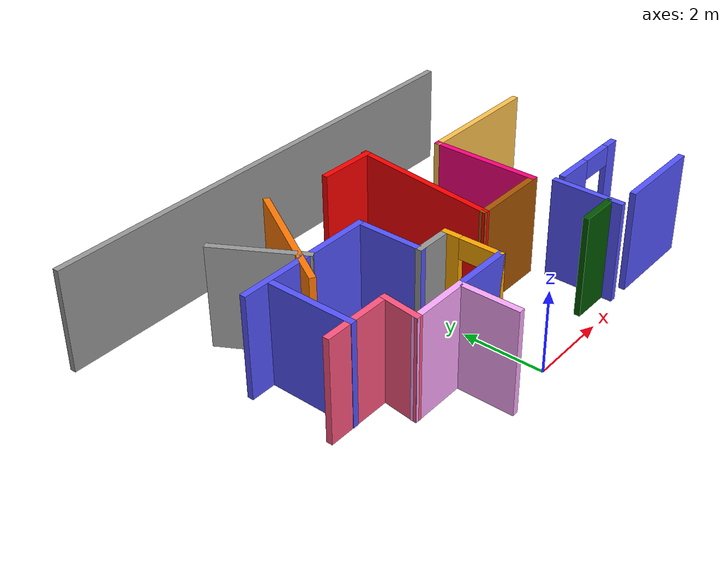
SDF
<sdf version="1.6">
 <model name="try_example">
  <link name="Wall_11">
   <pose>4.4301 4.9191 0 0 -0 3.14159</pose>
   <visual name="Wall_11_Visual">
    <pose>0 0 1.25 0 -0 0</pose>
    <geometry><box><size>3.25 0.15 2.5</size></box></geometry>
    <material>
     <script><uri>file://media/materials/scripts/gazebo.material</uri><name>Gazebo/Grey</name></script>
     <ambient>1 0.764706 0.305882 1</ambient>
     <diffuse>0.7 0.7 0.7 1</diffuse>
     <specular>0.01 0.01 0.01 1</specular>
     <emissive>0 0 0 1</emissive>
    </material>
   </visual>
   <collision name="Wall_11_Collision">
    <pose>0 0 1.25 0 -0 0</pose>
    <geometry><box><size>3.25 0.15 2.5</size></box></geometry>
    <surface>
     <friction>
      <ode><mu>1</mu><mu2>1</mu2><fdir1>0 0 0</fdir1><slip1>0</slip1><slip2>0</slip2></ode>
      <torsional>
       <coefficient>1</coefficient>
       <patch_radius>0</patch_radius>
       <surface_radius>0</surface_radius>
       <use_patch_radius>1</use_patch_radius>
       <ode><slip>0</slip></ode>
      </torsional>
     </friction>
     <bounce><restitution_coefficient>0</restitution_coefficient><threshold>1e+06</threshold></bounce>
     <contact>
      <collide_without_contact>0</collide_without_contact>
      <collide_without_contact_bitmask>1</collide_without_contact_bitmask>
      <collide_bitmask>1</collide_bitmask>
      <ode>
       <soft_cfm>0</soft_cfm>
       <soft_erp>0.2</soft_erp>
       <kp>1e+13</kp>
       <kd>1</kd>
       <max_vel>0.01</max_vel>
       <min_depth>0</min_depth>
      </ode>
      <bullet>
       <split_impulse>1</split_impulse>
       <split_impulse_penetration_threshold>-0.01</split_impulse_penetration_threshold>
       <soft_cfm>0</soft_cfm>
       <soft_erp>0.2</soft_erp>
       <kp>1e+13</kp>
       <kd>1</kd>
      </bullet>
     </contact>
    </surface>
   </collision>
  </link>
  <link name="Wall_12">
   <pose>2.8801 3.6191 0 0 0 -1.5708</pose>
   <visual name="Wall_12_Visual">
    <pose>0 0 1.25 0 -0 0</pose>
    <geometry><box><size>2.75 0.15 2.5</size></box></geometry>
    <material>
     <script><uri>file://media/materials/scripts/gazebo.material</uri><name>Gazebo/Grey</name></script>
     <ambient>1 0 0.498039 1</ambient>
     <diffuse>0.7 0.7 0.7 1</diffuse>
     <specular>0.01 0.01 0.01 1</specular>
     <emissive>0 0 0 1</emissive>
    </material>
   </visual>
   <collision name="Wall_12_Collision">
    <pose>0 0 1.25 0 -0 0</pose>
    <geometry><box><size>2.75 0.15 2.5</size></box></geometry>
    <surface>
     <friction>
      <ode><mu>1</mu><mu2>1</mu2><fdir1>0 0 0</fdir1><slip1>0</slip1><slip2>0</slip2></ode>
      <torsional>
       <coefficient>1</coefficient>
       <patch_radius>0</patch_radius>
       <surface_radius>0</surface_radius>
       <use_patch_radius>1</use_patch_radius>
       <ode><slip>0</slip></ode>
      </torsional>
     </friction>
     <bounce><restitution_coefficient>0</restitution_coefficient><threshold>1e+06</threshold></bounce>
     <contact>
      <collide_without_contact>0</collide_without_contact>
      <collide_without_contact_bitmask>1</collide_without_contact_bitmask>
      <collide_bitmask>1</collide_bitmask>
      <ode>
       <soft_cfm>0</soft_cfm>
       <soft_erp>0.2</soft_erp>
       <kp>1e+13</kp>
       <kd>1</kd>
       <max_vel>0.01</max_vel>
       <min_depth>0</min_depth>
      </ode>
      <bullet>
       <split_impulse>1</split_impulse>
       <split_impulse_penetration_threshold>-0.01</split_impulse_penetration_threshold>
       <soft_cfm>0</soft_cfm>
       <soft_erp>0.2</soft_erp>
       <kp>1e+13</kp>
       <kd>1</kd>
      </bullet>
     </contact>
    </surface>
   </collision>
  </link>
  <link name="Wall_13">
   <pose>1.9551 2.3191 0 0 -0 3.14159</pose>
   <visual name="Wall_13_Visual">
    <pose>0 0 1.25 0 -0 0</pose>
    <geometry><box><size>2 0.15 2.5</size></box></geometry>
    <material>
     <script><uri>file://media/materials/scripts/gazebo.material</uri><name>Gazebo/Grey</name></script>
     <ambient>0.666667 0.333333 0 1</ambient>
     <diffuse>0.7 0.7 0.7 1</diffuse>
     <specular>0.01 0.01 0.01 1</specular>
     <emissive>0 0 0 1</emissive>
    </material>
   </visual>
   <collision name="Wall_13_Collision">
    <pose>0 0 1.25 0 -0 0</pose>
    <geometry><box><size>2 0.15 2.5</size></box></geometry>
    <surface>
     <friction>
      <ode><mu>1</mu><mu2>1</mu2><fdir1>0 0 0</fdir1><slip1>0</slip1><slip2>0</slip2></ode>
      <torsional>
       <coefficient>1</coefficient>
       <patch_radius>0</patch_radius>
       <surface_radius>0</surface_radius>
       <use_patch_radius>1</use_patch_radius>
       <ode><slip>0</slip></ode>
      </torsional>
     </friction>
     <bounce><restitution_coefficient>0</restitution_coefficient><threshold>1e+06</threshold></bounce>
     <contact>
      <collide_without_contact>0</collide_without_contact>
      <collide_without_contact_bitmask>1</collide_without_contact_bitmask>
      <collide_bitmask>1</collide_bitmask>
      <ode>
       <soft_cfm>0</soft_cfm>
       <soft_erp>0.2</soft_erp>
       <kp>1e+13</kp>
       <kd>1</kd>
       <max_vel>0.01</max_vel>
       <min_depth>0</min_depth>
      </ode>
      <bullet>
       <split_impulse>1</split_impulse>
       <split_impulse_penetration_threshold>-0.01</split_impulse_penetration_threshold>
       <soft_cfm>0</soft_cfm>
       <soft_erp>0.2</soft_erp>
       <kp>1e+13</kp>
       <kd>1</kd>
      </bullet>
     </contact>
    </surface>
   </collision>
  </link>
  <link name="Wall_14">
   <pose>1.24117 4.12732 0 0 -0 1.45459</pose>
   <visual name="Wall_14_Visual">
    <pose>0 0 1.25 0 -0 0</pose>
    <geometry><box><size>3.79099 0.15 2.5</size></box></geometry>
    <material>
     <script><uri>file://media/materials/scripts/gazebo.material</uri><name>Gazebo/Grey</name></script>
     <ambient>1 0 0 1</ambient>
     <diffuse>0.7 0.7 0.7 1</diffuse>
     <specular>0.01 0.01 0.01 1</specular>
     <emissive>0 0 0 1</emissive>
    </material>
   </visual>
   <collision name="Wall_14_Collision">
    <pose>0 0 1.25 0 -0 0</pose>
    <geometry><box><size>3.79099 0.15 2.5</size></box></geometry>
    <surface>
     <friction>
      <ode><mu>1</mu><mu2>1</mu2><fdir1>0 0 0</fdir1><slip1>0</slip1><slip2>0</slip2></ode>
      <torsional>
       <coefficient>1</coefficient>
       <patch_radius>0</patch_radius>
       <surface_radius>0</surface_radius>
       <use_patch_radius>1</use_patch_radius>
       <ode><slip>0</slip></ode>
      </torsional>
     </friction>
     <bounce><restitution_coefficient>0</restitution_coefficient><threshold>1e+06</threshold></bounce>
     <contact>
      <collide_without_contact>0</collide_without_contact>
      <collide_without_contact_bitmask>1</collide_without_contact_bitmask>
      <collide_bitmask>1</collide_bitmask>
      <ode>
       <soft_cfm>0</soft_cfm>
       <soft_erp>0.2</soft_erp>
       <kp>1e+13</kp>
       <kd>1</kd>
       <max_vel>0.01</max_vel>
       <min_depth>0</min_depth>
      </ode>
      <bullet>
       <split_impulse>1</split_impulse>
       <split_impulse_penetration_threshold>-0.01</split_impulse_penetration_threshold>
       <soft_cfm>0</soft_cfm>
       <soft_erp>0.2</soft_erp>
       <kp>1e+13</kp>
       <kd>1</kd>
      </bullet>
     </contact>
    </surface>
   </collision>
  </link>
  <link name="Wall_15">
   <pose>0.777248 5.91794 0 0 -0 3.11554</pose>
   <visual name="Wall_15_Visual">
    <pose>0 0 1.25 0 -0 0</pose>
    <geometry><box><size>1.50046 0.15 2.5</size></box></geometry>
    <material>
     <script><uri>file://media/materials/scripts/gazebo.material</uri><name>Gazebo/Grey</name></script>
     <ambient>1 0 0 1</ambient>
     <diffuse>0.7 0.7 0.7 1</diffuse>
     <specular>0.01 0.01 0.01 1</specular>
     <emissive>0 0 0 1</emissive>
    </material>
   </visual>
   <collision name="Wall_15_Collision">
    <pose>0 0 1.25 0 -0 0</pose>
    <geometry><box><size>1.50046 0.15 2.5</size></box></geometry>
    <surface>
     <friction>
      <ode><mu>1</mu><mu2>1</mu2><fdir1>0 0 0</fdir1><slip1>0</slip1><slip2>0</slip2></ode>
      <torsional>
       <coefficient>1</coefficient>
       <patch_radius>0</patch_radius>
       <surface_radius>0</surface_radius>
       <use_patch_radius>1</use_patch_radius>
       <ode><slip>0</slip></ode>
      </torsional>
     </friction>
     <bounce><restitution_coefficient>0</restitution_coefficient><threshold>1e+06</threshold></bounce>
     <contact>
      <collide_without_contact>0</collide_without_contact>
      <collide_without_contact_bitmask>1</collide_without_contact_bitmask>
      <collide_bitmask>1</collide_bitmask>
      <ode>
       <soft_cfm>0</soft_cfm>
       <soft_erp>0.2</soft_erp>
       <kp>1e+13</kp>
       <kd>1</kd>
       <max_vel>0.01</max_vel>
       <min_depth>0</min_depth>
      </ode>
      <bullet>
       <split_impulse>1</split_impulse>
       <split_impulse_penetration_threshold>-0.01</split_impulse_penetration_threshold>
       <soft_cfm>0</soft_cfm>
       <soft_erp>0.2</soft_erp>
       <kp>1e+13</kp>
       <kd>1</kd>
      </bullet>
     </contact>
    </surface>
   </collision>
  </link>
  <link name="Wall_17">
   <pose>4.45382 1.83901 0 0 -0 3.14159</pose>
   <visual name="Wall_17_Visual_0">
    <pose>-0.934537 0 1.25 0 -0 0</pose>
    <geometry><box><size>0.380925 0.15 2.5</size></box></geometry>
    <material>
     <script><uri>file://media/materials/scripts/gazebo.material</uri><name>Gazebo/Grey</name></script>
     <ambient>0.333333 0.333333 1 1</ambient>
     <diffuse>0.7 0.7 0.7 1</diffuse>
     <specular>0.01 0.01 0.01 1</specular>
     <emissive>0 0 0 1</emissive>
    </material>
   </visual>
   <visual name="Wall_17_Visual_1">
    <pose>0.640463 0 1.25 0 -0 0</pose>
    <geometry><box><size>0.969075 0.15 2.5</size></box></geometry>
    <material>
     <script><uri>file://media/materials/scripts/gazebo.material</uri><name>Gazebo/Grey</name></script>
     <ambient>0.333333 0.333333 1 1</ambient>
     <diffuse>0.7 0.7 0.7 1</diffuse>
     <specular>0.01 0.01 0.01 1</specular>
     <emissive>0 0 0 1</emissive>
    </material>
   </visual>
   <visual name="Wall_17_Visual_2">
    <pose>-0.294075 0 2.25 0 -0 0</pose>
    <geometry><box><size>0.9 0.15 0.5</size></box></geometry>
    <material>
     <script><uri>file://media/materials/scripts/gazebo.material</uri><name>Gazebo/Grey</name></script>
     <ambient>0.333333 0.333333 1 1</ambient>
     <diffuse>0.7 0.7 0.7 1</diffuse>
     <specular>0.01 0.01 0.01 1</specular>
     <emissive>0 0 0 1</emissive>
    </material>
   </visual>
   <collision name="Wall_17_Collision_0">
    <pose>-0.934537 0 1.25 0 -0 0</pose>
    <geometry><box><size>0.380925 0.15 2.5</size></box></geometry>
    <surface>
     <friction>
      <ode><mu>1</mu><mu2>1</mu2><fdir1>0 0 0</fdir1><slip1>0</slip1><slip2>0</slip2></ode>
      <torsional>
       <coefficient>1</coefficient>
       <patch_radius>0</patch_radius>
       <surface_radius>0</surface_radius>
       <use_patch_radius>1</use_patch_radius>
       <ode><slip>0</slip></ode>
      </torsional>
     </friction>
     <bounce><restitution_coefficient>0</restitution_coefficient><threshold>1e+06</threshold></bounce>
     <contact>
      <collide_without_contact>0</collide_without_contact>
      <collide_without_contact_bitmask>1</collide_without_contact_bitmask>
      <collide_bitmask>1</collide_bitmask>
      <ode>
       <soft_cfm>0</soft_cfm>
       <soft_erp>0.2</soft_erp>
       <kp>1e+13</kp>
       <kd>1</kd>
       <max_vel>0.01</max_vel>
       <min_depth>0</min_depth>
      </ode>
      <bullet>
       <split_impulse>1</split_impulse>
       <split_impulse_penetration_threshold>-0.01</split_impulse_penetration_threshold>
       <soft_cfm>0</soft_cfm>
       <soft_erp>0.2</soft_erp>
       <kp>1e+13</kp>
       <kd>1</kd>
      </bullet>
     </contact>
    </surface>
   </collision>
   <collision name="Wall_17_Collision_1">
    <pose>0.640463 0 1.25 0 -0 0</pose>
    <geometry><box><size>0.969075 0.15 2.5</size></box></geometry>
    <surface>
     <friction>
      <ode><mu>1</mu><mu2>1</mu2><fdir1>0 0 0</fdir1><slip1>0</slip1><slip2>0</slip2></ode>
      <torsional>
       <coefficient>1</coefficient>
       <patch_radius>0</patch_radius>
       <surface_radius>0</surface_radius>
       <use_patch_radius>1</use_patch_radius>
       <ode><slip>0</slip></ode>
      </torsional>
     </friction>
     <bounce><restitution_coefficient>0</restitution_coefficient><threshold>1e+06</threshold></bounce>
     <contact>
      <collide_without_contact>0</collide_without_contact>
      <collide_without_contact_bitmask>1</collide_without_contact_bitmask>
      <collide_bitmask>1</collide_bitmask>
      <ode>
       <soft_cfm>0</soft_cfm>
       <soft_erp>0.2</soft_erp>
       <kp>1e+13</kp>
       <kd>1</kd>
       <max_vel>0.01</max_vel>
       <min_depth>0</min_depth>
      </ode>
      <bullet>
       <split_impulse>1</split_impulse>
       <split_impulse_penetration_threshold>-0.01</split_impulse_penetration_threshold>
       <soft_cfm>0</soft_cfm>
       <soft_erp>0.2</soft_erp>
       <kp>1e+13</kp>
       <kd>1</kd>
      </bullet>
     </contact>
    </surface>
   </collision>
   <collision name="Wall_17_Collision_2">
    <pose>-0.294075 0 2.25 0 -0 0</pose>
    <geometry><box><size>0.9 0.15 0.5</size></box></geometry>
    <surface>
     <friction>
      <ode><mu>1</mu><mu2>1</mu2><fdir1>0 0 0</fdir1><slip1>0</slip1><slip2>0</slip2></ode>
      <torsional>
       <coefficient>1</coefficient>
       <patch_radius>0</patch_radius>
       <surface_radius>0</surface_radius>
       <use_patch_radius>1</use_patch_radius>
       <ode><slip>0</slip></ode>
      </torsional>
     </friction>
     <bounce><restitution_coefficient>0</restitution_coefficient><threshold>1e+06</threshold></bounce>
     <contact>
      <collide_without_contact>0</collide_without_contact>
      <collide_without_contact_bitmask>1</collide_without_contact_bitmask>
      <collide_bitmask>1</collide_bitmask>
      <ode>
       <soft_cfm>0</soft_cfm>
       <soft_erp>0.2</soft_erp>
       <kp>1e+13</kp>
       <kd>1</kd>
       <max_vel>0.01</max_vel>
       <min_depth>0</min_depth>
      </ode>
      <bullet>
       <split_impulse>1</split_impulse>
       <split_impulse_penetration_threshold>-0.01</split_impulse_penetration_threshold>
       <soft_cfm>0</soft_cfm>
       <soft_erp>0.2</soft_erp>
       <kp>1e+13</kp>
       <kd>1</kd>
      </bullet>
     </contact>
    </surface>
   </collision>
  </link>
  <link name="Wall_18">
   <pose>3.13064 1.04811 0 0 0 -1.5708</pose>
   <visual name="Wall_18_Visual">
    <pose>0 0 1.25 0 -0 0</pose>
    <geometry><box><size>1.75 0.15 2.5</size></box></geometry>
    <material>
     <script><uri>file://media/materials/scripts/gazebo.material</uri><name>Gazebo/Grey</name></script>
     <ambient>0.333333 0.333333 1 1</ambient>
     <diffuse>0.7 0.7 0.7 1</diffuse>
     <specular>0.01 0.01 0.01 1</specular>
     <emissive>0 0 0 1</emissive>
    </material>
   </visual>
   <collision name="Wall_18_Collision">
    <pose>0 0 1.25 0 -0 0</pose>
    <geometry><box><size>1.75 0.15 2.5</size></box></geometry>
    <surface>
     <friction>
      <ode><mu>1</mu><mu2>1</mu2><fdir1>0 0 0</fdir1><slip1>0</slip1><slip2>0</slip2></ode>
      <torsional>
       <coefficient>1</coefficient>
       <patch_radius>0</patch_radius>
       <surface_radius>0</surface_radius>
       <use_patch_radius>1</use_patch_radius>
       <ode><slip>0</slip></ode>
      </torsional>
     </friction>
     <bounce><restitution_coefficient>0</restitution_coefficient><threshold>1e+06</threshold></bounce>
     <contact>
      <collide_without_contact>0</collide_without_contact>
      <collide_without_contact_bitmask>1</collide_without_contact_bitmask>
      <collide_bitmask>1</collide_bitmask>
      <ode>
       <soft_cfm>0</soft_cfm>
       <soft_erp>0.2</soft_erp>
       <kp>1e+13</kp>
       <kd>1</kd>
       <max_vel>0.01</max_vel>
       <min_depth>0</min_depth>
      </ode>
      <bullet>
       <split_impulse>1</split_impulse>
       <split_impulse_penetration_threshold>-0.01</split_impulse_penetration_threshold>
       <soft_cfm>0</soft_cfm>
       <soft_erp>0.2</soft_erp>
       <kp>1e+13</kp>
       <kd>1</kd>
      </bullet>
     </contact>
    </surface>
   </collision>
  </link>
  <link name="Wall_24">
   <pose>4.76828 0.244473 0 0 -0 0</pose>
   <visual name="Wall_24_Visual">
    <pose>0 0 1.25 0 -0 0</pose>
    <geometry><box><size>2.25 0.15 2.5</size></box></geometry>
    <material>
     <script><uri>file://media/materials/scripts/gazebo.material</uri><name>Gazebo/Grey</name></script>
     <ambient>0.333333 0.333333 1 1</ambient>
     <diffuse>0.7 0.7 0.7 1</diffuse>
     <specular>0.01 0.01 0.01 1</specular>
     <emissive>0 0 0 1</emissive>
    </material>
   </visual>
   <collision name="Wall_24_Collision">
    <pose>0 0 1.25 0 -0 0</pose>
    <geometry><box><size>2.25 0.15 2.5</size></box></geometry>
    <surface>
     <friction>
      <ode><mu>1</mu><mu2>1</mu2><fdir1>0 0 0</fdir1><slip1>0</slip1><slip2>0</slip2></ode>
      <torsional>
       <coefficient>1</coefficient>
       <patch_radius>0</patch_radius>
       <surface_radius>0</surface_radius>
       <use_patch_radius>1</use_patch_radius>
       <ode><slip>0</slip></ode>
      </torsional>
     </friction>
     <bounce><restitution_coefficient>0</restitution_coefficient><threshold>1e+06</threshold></bounce>
     <contact>
      <collide_without_contact>0</collide_without_contact>
      <collide_without_contact_bitmask>1</collide_without_contact_bitmask>
      <collide_bitmask>1</collide_bitmask>
      <ode>
       <soft_cfm>0</soft_cfm>
       <soft_erp>0.2</soft_erp>
       <kp>1e+13</kp>
       <kd>1</kd>
       <max_vel>0.01</max_vel>
       <min_depth>0</min_depth>
      </ode>
      <bullet>
       <split_impulse>1</split_impulse>
       <split_impulse_penetration_threshold>-0.01</split_impulse_penetration_threshold>
       <soft_cfm>0</soft_cfm>
       <soft_erp>0.2</soft_erp>
       <kp>1e+13</kp>
       <kd>1</kd>
      </bullet>
     </contact>
    </surface>
   </collision>
  </link>
  <link name="Wall_3">
   <pose>-0.053538 7.54122 0 0 -0 0</pose>
   <visual name="Wall_3_Visual">
    <pose>0 0 1.25 0 -0 0</pose>
    <geometry><box><size>12 0.15 2.5</size></box></geometry>
    <material>
     <script><uri>file://media/materials/scripts/gazebo.material</uri><name>Gazebo/Grey</name></script>
     <ambient>0 0 0 1</ambient>
     <diffuse>0.7 0.7 0.7 1</diffuse>
     <specular>0.01 0.01 0.01 1</specular>
     <emissive>0 0 0 1</emissive>
    </material>
   </visual>
   <collision name="Wall_3_Collision">
    <pose>0 0 1.25 0 -0 0</pose>
    <geometry><box><size>12 0.15 2.5</size></box></geometry>
    <surface>
     <friction>
      <ode><mu>1</mu><mu2>1</mu2><fdir1>0 0 0</fdir1><slip1>0</slip1><slip2>0</slip2></ode>
      <torsional>
       <coefficient>1</coefficient>
       <patch_radius>0</patch_radius>
       <surface_radius>0</surface_radius>
       <use_patch_radius>1</use_patch_radius>
       <ode><slip>0</slip></ode>
      </torsional>
     </friction>
     <bounce><restitution_coefficient>0</restitution_coefficient><threshold>1e+06</threshold></bounce>
     <contact>
      <collide_without_contact>0</collide_without_contact>
      <collide_without_contact_bitmask>1</collide_without_contact_bitmask>
      <collide_bitmask>1</collide_bitmask>
      <ode>
       <soft_cfm>0</soft_cfm>
       <soft_erp>0.2</soft_erp>
       <kp>1e+13</kp>
       <kd>1</kd>
       <max_vel>0.01</max_vel>
       <min_depth>0</min_depth>
      </ode>
      <bullet>
       <split_impulse>1</split_impulse>
       <split_impulse_penetration_threshold>-0.01</split_impulse_penetration_threshold>
       <soft_cfm>0</soft_cfm>
       <soft_erp>0.2</soft_erp>
       <kp>1e+13</kp>
       <kd>1</kd>
      </bullet>
     </contact>
    </surface>
   </collision>
  </link>
  <link name="Wall_30">
   <pose>-1.46058 0.452981 0 0 -0 1.5708</pose>
   <visual name="Wall_30_Visual">
    <pose>0 0 1.25 0 -0 0</pose>
    <geometry><box><size>1.5 0.15 2.5</size></box></geometry>
    <material>
     <script><uri>file://media/materials/scripts/gazebo.material</uri><name>Gazebo/Grey</name></script>
     <ambient>1 0.666667 1 1</ambient>
     <diffuse>0.7 0.7 0.7 1</diffuse>
     <specular>0.01 0.01 0.01 1</specular>
     <emissive>0 0 0 1</emissive>
    </material>
   </visual>
   <collision name="Wall_30_Collision">
    <pose>0 0 1.25 0 -0 0</pose>
    <geometry><box><size>1.5 0.15 2.5</size></box></geometry>
    <surface>
     <friction>
      <ode><mu>1</mu><mu2>1</mu2><fdir1>0 0 0</fdir1><slip1>0</slip1><slip2>0</slip2></ode>
      <torsional>
       <coefficient>1</coefficient>
       <patch_radius>0</patch_radius>
       <surface_radius>0</surface_radius>
       <use_patch_radius>1</use_patch_radius>
       <ode><slip>0</slip></ode>
      </torsional>
     </friction>
     <bounce><restitution_coefficient>0</restitution_coefficient><threshold>1e+06</threshold></bounce>
     <contact>
      <collide_without_contact>0</collide_without_contact>
      <collide_without_contact_bitmask>1</collide_without_contact_bitmask>
      <collide_bitmask>1</collide_bitmask>
      <ode>
       <soft_cfm>0</soft_cfm>
       <soft_erp>0.2</soft_erp>
       <kp>1e+13</kp>
       <kd>1</kd>
       <max_vel>0.01</max_vel>
       <min_depth>0</min_depth>
      </ode>
      <bullet>
       <split_impulse>1</split_impulse>
       <split_impulse_penetration_threshold>-0.01</split_impulse_penetration_threshold>
       <soft_cfm>0</soft_cfm>
       <soft_erp>0.2</soft_erp>
       <kp>1e+13</kp>
       <kd>1</kd>
      </bullet>
     </contact>
    </surface>
   </collision>
  </link>
  <link name="Wall_31">
   <pose>-2.13558 1.12798 0 0 -0 3.14159</pose>
   <visual name="Wall_31_Visual">
    <pose>0 0 1.25 0 -0 0</pose>
    <geometry><box><size>1.5 0.15 2.5</size></box></geometry>
    <material>
     <script><uri>file://media/materials/scripts/gazebo.material</uri><name>Gazebo/Grey</name></script>
     <ambient>1 0.666667 1 1</ambient>
     <diffuse>0.7 0.7 0.7 1</diffuse>
     <specular>0.01 0.01 0.01 1</specular>
     <emissive>0 0 0 1</emissive>
    </material>
   </visual>
   <collision name="Wall_31_Collision">
    <pose>0 0 1.25 0 -0 0</pose>
    <geometry><box><size>1.5 0.15 2.5</size></box></geometry>
    <surface>
     <friction>
      <ode><mu>1</mu><mu2>1</mu2><fdir1>0 0 0</fdir1><slip1>0</slip1><slip2>0</slip2></ode>
      <torsional>
       <coefficient>1</coefficient>
       <patch_radius>0</patch_radius>
       <surface_radius>0</surface_radius>
       <use_patch_radius>1</use_patch_radius>
       <ode><slip>0</slip></ode>
      </torsional>
     </friction>
     <bounce><restitution_coefficient>0</restitution_coefficient><threshold>1e+06</threshold></bounce>
     <contact>
      <collide_without_contact>0</collide_without_contact>
      <collide_without_contact_bitmask>1</collide_without_contact_bitmask>
      <collide_bitmask>1</collide_bitmask>
      <ode>
       <soft_cfm>0</soft_cfm>
       <soft_erp>0.2</soft_erp>
       <kp>1e+13</kp>
       <kd>1</kd>
       <max_vel>0.01</max_vel>
       <min_depth>0</min_depth>
      </ode>
      <bullet>
       <split_impulse>1</split_impulse>
       <split_impulse_penetration_threshold>-0.01</split_impulse_penetration_threshold>
       <soft_cfm>0</soft_cfm>
       <soft_erp>0.2</soft_erp>
       <kp>1e+13</kp>
       <kd>1</kd>
      </bullet>
     </contact>
    </surface>
   </collision>
  </link>
  <link name="Wall_34">
   <pose>-0.78558 1.12798 0 0 -0 0</pose>
   <visual name="Wall_34_Visual">
    <pose>0 0 1.25 0 -0 0</pose>
    <geometry><box><size>1.5 0.15 2.5</size></box></geometry>
    <material>
     <script><uri>file://media/materials/scripts/gazebo.material</uri><name>Gazebo/Grey</name></script>
     <ambient>0.333333 0.333333 1 1</ambient>
     <diffuse>0.7 0.7 0.7 1</diffuse>
     <specular>0.01 0.01 0.01 1</specular>
     <emissive>0 0 0 1</emissive>
    </material>
   </visual>
   <collision name="Wall_34_Collision">
    <pose>0 0 1.25 0 -0 0</pose>
    <geometry><box><size>1.5 0.15 2.5</size></box></geometry>
    <surface>
     <friction>
      <ode><mu>1</mu><mu2>1</mu2><fdir1>0 0 0</fdir1><slip1>0</slip1><slip2>0</slip2></ode>
      <torsional>
       <coefficient>1</coefficient>
       <patch_radius>0</patch_radius>
       <surface_radius>0</surface_radius>
       <use_patch_radius>1</use_patch_radius>
       <ode><slip>0</slip></ode>
      </torsional>
     </friction>
     <bounce><restitution_coefficient>0</restitution_coefficient><threshold>1e+06</threshold></bounce>
     <contact>
      <collide_without_contact>0</collide_without_contact>
      <collide_without_contact_bitmask>1</collide_without_contact_bitmask>
      <collide_bitmask>1</collide_bitmask>
      <ode>
       <soft_cfm>0</soft_cfm>
       <soft_erp>0.2</soft_erp>
       <kp>1e+13</kp>
       <kd>1</kd>
       <max_vel>0.01</max_vel>
       <min_depth>0</min_depth>
      </ode>
      <bullet>
       <split_impulse>1</split_impulse>
       <split_impulse_penetration_threshold>-0.01</split_impulse_penetration_threshold>
       <soft_cfm>0</soft_cfm>
       <soft_erp>0.2</soft_erp>
       <kp>1e+13</kp>
       <kd>1</kd>
      </bullet>
     </contact>
    </surface>
   </collision>
  </link>
  <link name="Wall_35">
   <pose>-0.11058 1.80298 0 0 -0 1.5708</pose>
   <visual name="Wall_35_Visual_0">
    <pose>-0.680114 0 1.25 0 -0 0</pose>
    <geometry><box><size>0.139772 0.15 2.5</size></box></geometry>
    <material>
     <script><uri>file://media/materials/scripts/gazebo.material</uri><name>Gazebo/Grey</name></script>
     <ambient>1 0.666667 0 1</ambient>
     <diffuse>0.7 0.7 0.7 1</diffuse>
     <specular>0.01 0.01 0.01 1</specular>
     <emissive>0 0 0 1</emissive>
    </material>
   </visual>
   <visual name="Wall_35_Visual_1">
    <pose>0.519886 0 1.25 0 -0 0</pose>
    <geometry><box><size>0.460228 0.15 2.5</size></box></geometry>
    <material>
     <script><uri>file://media/materials/scripts/gazebo.material</uri><name>Gazebo/Grey</name></script>
     <ambient>1 0.666667 0 1</ambient>
     <diffuse>0.7 0.7 0.7 1</diffuse>
     <specular>0.01 0.01 0.01 1</specular>
     <emissive>0 0 0 1</emissive>
    </material>
   </visual>
   <visual name="Wall_35_Visual_2">
    <pose>-0.160228 0 2.25 0 -0 0</pose>
    <geometry><box><size>0.9 0.15 0.5</size></box></geometry>
    <material>
     <script><uri>file://media/materials/scripts/gazebo.material</uri><name>Gazebo/Grey</name></script>
     <ambient>1 0.666667 0 1</ambient>
     <diffuse>0.7 0.7 0.7 1</diffuse>
     <specular>0.01 0.01 0.01 1</specular>
     <emissive>0 0 0 1</emissive>
    </material>
   </visual>
   <collision name="Wall_35_Collision_0">
    <pose>-0.680114 0 1.25 0 -0 0</pose>
    <geometry><box><size>0.139772 0.15 2.5</size></box></geometry>
    <surface>
     <friction>
      <ode><mu>1</mu><mu2>1</mu2><fdir1>0 0 0</fdir1><slip1>0</slip1><slip2>0</slip2></ode>
      <torsional>
       <coefficient>1</coefficient>
       <patch_radius>0</patch_radius>
       <surface_radius>0</surface_radius>
       <use_patch_radius>1</use_patch_radius>
       <ode><slip>0</slip></ode>
      </torsional>
     </friction>
     <bounce><restitution_coefficient>0</restitution_coefficient><threshold>1e+06</threshold></bounce>
     <contact>
      <collide_without_contact>0</collide_without_contact>
      <collide_without_contact_bitmask>1</collide_without_contact_bitmask>
      <collide_bitmask>1</collide_bitmask>
      <ode>
       <soft_cfm>0</soft_cfm>
       <soft_erp>0.2</soft_erp>
       <kp>1e+13</kp>
       <kd>1</kd>
       <max_vel>0.01</max_vel>
       <min_depth>0</min_depth>
      </ode>
      <bullet>
       <split_impulse>1</split_impulse>
       <split_impulse_penetration_threshold>-0.01</split_impulse_penetration_threshold>
       <soft_cfm>0</soft_cfm>
       <soft_erp>0.2</soft_erp>
       <kp>1e+13</kp>
       <kd>1</kd>
      </bullet>
     </contact>
    </surface>
   </collision>
   <collision name="Wall_35_Collision_1">
    <pose>0.519886 0 1.25 0 -0 0</pose>
    <geometry><box><size>0.460228 0.15 2.5</size></box></geometry>
    <surface>
     <friction>
      <ode><mu>1</mu><mu2>1</mu2><fdir1>0 0 0</fdir1><slip1>0</slip1><slip2>0</slip2></ode>
      <torsional>
       <coefficient>1</coefficient>
       <patch_radius>0</patch_radius>
       <surface_radius>0</surface_radius>
       <use_patch_radius>1</use_patch_radius>
       <ode><slip>0</slip></ode>
      </torsional>
     </friction>
     <bounce><restitution_coefficient>0</restitution_coefficient><threshold>1e+06</threshold></bounce>
     <contact>
      <collide_without_contact>0</collide_without_contact>
      <collide_without_contact_bitmask>1</collide_without_contact_bitmask>
      <collide_bitmask>1</collide_bitmask>
      <ode>
       <soft_cfm>0</soft_cfm>
       <soft_erp>0.2</soft_erp>
       <kp>1e+13</kp>
       <kd>1</kd>
       <max_vel>0.01</max_vel>
       <min_depth>0</min_depth>
      </ode>
      <bullet>
       <split_impulse>1</split_impulse>
       <split_impulse_penetration_threshold>-0.01</split_impulse_penetration_threshold>
       <soft_cfm>0</soft_cfm>
       <soft_erp>0.2</soft_erp>
       <kp>1e+13</kp>
       <kd>1</kd>
      </bullet>
     </contact>
    </surface>
   </collision>
   <collision name="Wall_35_Collision_2">
    <pose>-0.160228 0 2.25 0 -0 0</pose>
    <geometry><box><size>0.9 0.15 0.5</size></box></geometry>
    <surface>
     <friction>
      <ode><mu>1</mu><mu2>1</mu2><fdir1>0 0 0</fdir1><slip1>0</slip1><slip2>0</slip2></ode>
      <torsional>
       <coefficient>1</coefficient>
       <patch_radius>0</patch_radius>
       <surface_radius>0</surface_radius>
       <use_patch_radius>1</use_patch_radius>
       <ode><slip>0</slip></ode>
      </torsional>
     </friction>
     <bounce><restitution_coefficient>0</restitution_coefficient><threshold>1e+06</threshold></bounce>
     <contact>
      <collide_without_contact>0</collide_without_contact>
      <collide_without_contact_bitmask>1</collide_without_contact_bitmask>
      <collide_bitmask>1</collide_bitmask>
      <ode>
       <soft_cfm>0</soft_cfm>
       <soft_erp>0.2</soft_erp>
       <kp>1e+13</kp>
       <kd>1</kd>
       <max_vel>0.01</max_vel>
       <min_depth>0</min_depth>
      </ode>
      <bullet>
       <split_impulse>1</split_impulse>
       <split_impulse_penetration_threshold>-0.01</split_impulse_penetration_threshold>
       <soft_cfm>0</soft_cfm>
       <soft_erp>0.2</soft_erp>
       <kp>1e+13</kp>
       <kd>1</kd>
      </bullet>
     </contact>
    </surface>
   </collision>
  </link>
  <link name="Wall_36">
   <pose>-0.53558 2.47798 0 0 -0 3.14159</pose>
   <visual name="Wall_36_Visual">
    <pose>0 0 1.25 0 -0 0</pose>
    <geometry><box><size>1 0.15 2.5</size></box></geometry>
    <material>
     <script><uri>file://media/materials/scripts/gazebo.material</uri><name>Gazebo/Grey</name></script>
     <ambient>1 1 1 1</ambient>
     <diffuse>0.7 0.7 0.7 1</diffuse>
     <specular>0.01 0.01 0.01 1</specular>
     <emissive>0 0 0 1</emissive>
    </material>
   </visual>
   <collision name="Wall_36_Collision">
    <pose>0 0 1.25 0 -0 0</pose>
    <geometry><box><size>1 0.15 2.5</size></box></geometry>
    <surface>
     <friction>
      <ode><mu>1</mu><mu2>1</mu2><fdir1>0 0 0</fdir1><slip1>0</slip1><slip2>0</slip2></ode>
      <torsional>
       <coefficient>1</coefficient>
       <patch_radius>0</patch_radius>
       <surface_radius>0</surface_radius>
       <use_patch_radius>1</use_patch_radius>
       <ode><slip>0</slip></ode>
      </torsional>
     </friction>
     <bounce><restitution_coefficient>0</restitution_coefficient><threshold>1e+06</threshold></bounce>
     <contact>
      <collide_without_contact>0</collide_without_contact>
      <collide_without_contact_bitmask>1</collide_without_contact_bitmask>
      <collide_bitmask>1</collide_bitmask>
      <ode>
       <soft_cfm>0</soft_cfm>
       <soft_erp>0.2</soft_erp>
       <kp>1e+13</kp>
       <kd>1</kd>
       <max_vel>0.01</max_vel>
       <min_depth>0</min_depth>
      </ode>
      <bullet>
       <split_impulse>1</split_impulse>
       <split_impulse_penetration_threshold>-0.01</split_impulse_penetration_threshold>
       <soft_cfm>0</soft_cfm>
       <soft_erp>0.2</soft_erp>
       <kp>1e+13</kp>
       <kd>1</kd>
      </bullet>
     </contact>
    </surface>
   </collision>
  </link>
  <link name="Wall_37">
   <pose>-0.96058 3.27798 0 0 -0 1.5708</pose>
   <visual name="Wall_37_Visual">
    <pose>0 0 1.25 0 -0 0</pose>
    <geometry><box><size>1.75 0.15 2.5</size></box></geometry>
    <material>
     <script><uri>file://media/materials/scripts/gazebo.material</uri><name>Gazebo/Grey</name></script>
     <ambient>0.333333 0.333333 1 1</ambient>
     <diffuse>0.7 0.7 0.7 1</diffuse>
     <specular>0.01 0.01 0.01 1</specular>
     <emissive>0 0 0 1</emissive>
    </material>
   </visual>
   <collision name="Wall_37_Collision">
    <pose>0 0 1.25 0 -0 0</pose>
    <geometry><box><size>1.75 0.15 2.5</size></box></geometry>
    <surface>
     <friction>
      <ode><mu>1</mu><mu2>1</mu2><fdir1>0 0 0</fdir1><slip1>0</slip1><slip2>0</slip2></ode>
      <torsional>
       <coefficient>1</coefficient>
       <patch_radius>0</patch_radius>
       <surface_radius>0</surface_radius>
       <use_patch_radius>1</use_patch_radius>
       <ode><slip>0</slip></ode>
      </torsional>
     </friction>
     <bounce><restitution_coefficient>0</restitution_coefficient><threshold>1e+06</threshold></bounce>
     <contact>
      <collide_without_contact>0</collide_without_contact>
      <collide_without_contact_bitmask>1</collide_without_contact_bitmask>
      <collide_bitmask>1</collide_bitmask>
      <ode>
       <soft_cfm>0</soft_cfm>
       <soft_erp>0.2</soft_erp>
       <kp>1e+13</kp>
       <kd>1</kd>
       <max_vel>0.01</max_vel>
       <min_depth>0</min_depth>
      </ode>
      <bullet>
       <split_impulse>1</split_impulse>
       <split_impulse_penetration_threshold>-0.01</split_impulse_penetration_threshold>
       <soft_cfm>0</soft_cfm>
       <soft_erp>0.2</soft_erp>
       <kp>1e+13</kp>
       <kd>1</kd>
      </bullet>
     </contact>
    </surface>
   </collision>
  </link>
  <link name="Wall_38">
   <pose>-2.63558 4.07798 0 0 -0 3.14159</pose>
   <visual name="Wall_38_Visual">
    <pose>0 0 1.25 0 -0 0</pose>
    <geometry><box><size>3.5 0.15 2.5</size></box></geometry>
    <material>
     <script><uri>file://media/materials/scripts/gazebo.material</uri><name>Gazebo/Grey</name></script>
     <ambient>0.333333 0.333333 1 1</ambient>
     <diffuse>0.7 0.7 0.7 1</diffuse>
     <specular>0.01 0.01 0.01 1</specular>
     <emissive>0 0 0 1</emissive>
    </material>
   </visual>
   <collision name="Wall_38_Collision">
    <pose>0 0 1.25 0 -0 0</pose>
    <geometry><box><size>3.5 0.15 2.5</size></box></geometry>
    <surface>
     <friction>
      <ode><mu>1</mu><mu2>1</mu2><fdir1>0 0 0</fdir1><slip1>0</slip1><slip2>0</slip2></ode>
      <torsional>
       <coefficient>1</coefficient>
       <patch_radius>0</patch_radius>
       <surface_radius>0</surface_radius>
       <use_patch_radius>1</use_patch_radius>
       <ode><slip>0</slip></ode>
      </torsional>
     </friction>
     <bounce><restitution_coefficient>0</restitution_coefficient><threshold>1e+06</threshold></bounce>
     <contact>
      <collide_without_contact>0</collide_without_contact>
      <collide_without_contact_bitmask>1</collide_without_contact_bitmask>
      <collide_bitmask>1</collide_bitmask>
      <ode>
       <soft_cfm>0</soft_cfm>
       <soft_erp>0.2</soft_erp>
       <kp>1e+13</kp>
       <kd>1</kd>
       <max_vel>0.01</max_vel>
       <min_depth>0</min_depth>
      </ode>
      <bullet>
       <split_impulse>1</split_impulse>
       <split_impulse_penetration_threshold>-0.01</split_impulse_penetration_threshold>
       <soft_cfm>0</soft_cfm>
       <soft_erp>0.2</soft_erp>
       <kp>1e+13</kp>
       <kd>1</kd>
      </bullet>
     </contact>
    </surface>
   </collision>
  </link>
  <link name="Wall_39">
   <pose>-3.70247 3.01884 0 0 0 -1.5708</pose>
   <visual name="Wall_39_Visual">
    <pose>0 0 1.25 0 -0 0</pose>
    <geometry><box><size>2.25 0.15 2.5</size></box></geometry>
    <material>
     <script><uri>file://media/materials/scripts/gazebo.material</uri><name>Gazebo/Grey</name></script>
     <ambient>0.333333 0.333333 1 1</ambient>
     <diffuse>0.7 0.7 0.7 1</diffuse>
     <specular>0.01 0.01 0.01 1</specular>
     <emissive>0 0 0 1</emissive>
    </material>
   </visual>
   <collision name="Wall_39_Collision">
    <pose>0 0 1.25 0 -0 0</pose>
    <geometry><box><size>2.25 0.15 2.5</size></box></geometry>
    <surface>
     <friction>
      <ode><mu>1</mu><mu2>1</mu2><fdir1>0 0 0</fdir1><slip1>0</slip1><slip2>0</slip2></ode>
      <torsional>
       <coefficient>1</coefficient>
       <patch_radius>0</patch_radius>
       <surface_radius>0</surface_radius>
       <use_patch_radius>1</use_patch_radius>
       <ode><slip>0</slip></ode>
      </torsional>
     </friction>
     <bounce><restitution_coefficient>0</restitution_coefficient><threshold>1e+06</threshold></bounce>
     <contact>
      <collide_without_contact>0</collide_without_contact>
      <collide_without_contact_bitmask>1</collide_without_contact_bitmask>
      <collide_bitmask>1</collide_bitmask>
      <ode>
       <soft_cfm>0</soft_cfm>
       <soft_erp>0.2</soft_erp>
       <kp>1e+13</kp>
       <kd>1</kd>
       <max_vel>0.01</max_vel>
       <min_depth>0</min_depth>
      </ode>
      <bullet>
       <split_impulse>1</split_impulse>
       <split_impulse_penetration_threshold>-0.01</split_impulse_penetration_threshold>
       <soft_cfm>0</soft_cfm>
       <soft_erp>0.2</soft_erp>
       <kp>1e+13</kp>
       <kd>1</kd>
      </bullet>
     </contact>
    </surface>
   </collision>
  </link>
  <link name="Wall_40">
   <pose>-3.51058 1.97798 0 0 -0 0</pose>
   <visual name="Wall_40_Visual">
    <pose>0 0 1.25 0 -0 0</pose>
    <geometry><box><size>1.75 0.15 2.5</size></box></geometry>
    <material>
     <script><uri>file://media/materials/scripts/gazebo.material</uri><name>Gazebo/Grey</name></script>
     <ambient>1 0.333333 0.498039 1</ambient>
     <diffuse>0.7 0.7 0.7 1</diffuse>
     <specular>0.01 0.01 0.01 1</specular>
     <emissive>0 0 0 1</emissive>
    </material>
   </visual>
   <collision name="Wall_40_Collision">
    <pose>0 0 1.25 0 -0 0</pose>
    <geometry><box><size>1.75 0.15 2.5</size></box></geometry>
    <surface>
     <friction>
      <ode><mu>1</mu><mu2>1</mu2><fdir1>0 0 0</fdir1><slip1>0</slip1><slip2>0</slip2></ode>
      <torsional>
       <coefficient>1</coefficient>
       <patch_radius>0</patch_radius>
       <surface_radius>0</surface_radius>
       <use_patch_radius>1</use_patch_radius>
       <ode><slip>0</slip></ode>
      </torsional>
     </friction>
     <bounce><restitution_coefficient>0</restitution_coefficient><threshold>1e+06</threshold></bounce>
     <contact>
      <collide_without_contact>0</collide_without_contact>
      <collide_without_contact_bitmask>1</collide_without_contact_bitmask>
      <collide_bitmask>1</collide_bitmask>
      <ode>
       <soft_cfm>0</soft_cfm>
       <soft_erp>0.2</soft_erp>
       <kp>1e+13</kp>
       <kd>1</kd>
       <max_vel>0.01</max_vel>
       <min_depth>0</min_depth>
      </ode>
      <bullet>
       <split_impulse>1</split_impulse>
       <split_impulse_penetration_threshold>-0.01</split_impulse_penetration_threshold>
       <soft_cfm>0</soft_cfm>
       <soft_erp>0.2</soft_erp>
       <kp>1e+13</kp>
       <kd>1</kd>
      </bullet>
     </contact>
    </surface>
   </collision>
  </link>
  <link name="Wall_53">
   <pose>-2.76058 1.55298 0 0 0 -1.6879</pose>
   <visual name="Wall_53_Visual">
    <pose>0 0 1.25 0 -0 0</pose>
    <geometry><box><size>1.00586 0.15 2.5</size></box></geometry>
    <material>
     <script><uri>file://media/materials/scripts/gazebo.material</uri><name>Gazebo/Grey</name></script>
     <ambient>1 0.333333 0.498039 1</ambient>
     <diffuse>0.7 0.7 0.7 1</diffuse>
     <specular>0.01 0.01 0.01 1</specular>
     <emissive>0 0 0 1</emissive>
    </material>
   </visual>
   <collision name="Wall_53_Collision">
    <pose>0 0 1.25 0 -0 0</pose>
    <geometry><box><size>1.00586 0.15 2.5</size></box></geometry>
    <surface>
     <friction>
      <ode><mu>1</mu><mu2>1</mu2><fdir1>0 0 0</fdir1><slip1>0</slip1><slip2>0</slip2></ode>
      <torsional>
       <coefficient>1</coefficient>
       <patch_radius>0</patch_radius>
       <surface_radius>0</surface_radius>
       <use_patch_radius>1</use_patch_radius>
       <ode><slip>0</slip></ode>
      </torsional>
     </friction>
     <bounce><restitution_coefficient>0</restitution_coefficient><threshold>1e+06</threshold></bounce>
     <contact>
      <collide_without_contact>0</collide_without_contact>
      <collide_without_contact_bitmask>1</collide_without_contact_bitmask>
      <collide_bitmask>1</collide_bitmask>
      <ode>
       <soft_cfm>0</soft_cfm>
       <soft_erp>0.2</soft_erp>
       <kp>1e+13</kp>
       <kd>1</kd>
       <max_vel>0.01</max_vel>
       <min_depth>0</min_depth>
      </ode>
      <bullet>
       <split_impulse>1</split_impulse>
       <split_impulse_penetration_threshold>-0.01</split_impulse_penetration_threshold>
       <soft_cfm>0</soft_cfm>
       <soft_erp>0.2</soft_erp>
       <kp>1e+13</kp>
       <kd>1</kd>
      </bullet>
     </contact>
    </surface>
   </collision>
  </link>
  <link name="Wall_56">
   <pose>2.62687 0.495726 0 0 -0 0</pose>
   <visual name="Wall_56_Visual">
    <pose>0 0 1.25 0 -0 0</pose>
    <geometry><box><size>1 0.15 2.5</size></box></geometry>
    <material>
     <script><uri>file://media/materials/scripts/gazebo.material</uri><name>Gazebo/Grey</name></script>
     <ambient>0 0.333333 0 1</ambient>
     <diffuse>0.7 0.7 0.7 1</diffuse>
     <specular>0.01 0.01 0.01 1</specular>
     <emissive>0 0 0 1</emissive>
    </material>
   </visual>
   <collision name="Wall_56_Collision">
    <pose>0 0 1.25 0 -0 0</pose>
    <geometry><box><size>1 0.15 2.5</size></box></geometry>
    <surface>
     <friction>
      <ode><mu>1</mu><mu2>1</mu2><fdir1>0 0 0</fdir1><slip1>0</slip1><slip2>0</slip2></ode>
      <torsional>
       <coefficient>1</coefficient>
       <patch_radius>0</patch_radius>
       <surface_radius>0</surface_radius>
       <use_patch_radius>1</use_patch_radius>
       <ode><slip>0</slip></ode>
      </torsional>
     </friction>
     <bounce><restitution_coefficient>0</restitution_coefficient><threshold>1e+06</threshold></bounce>
     <contact>
      <collide_without_contact>0</collide_without_contact>
      <collide_without_contact_bitmask>1</collide_without_contact_bitmask>
      <collide_bitmask>1</collide_bitmask>
      <ode>
       <soft_cfm>0</soft_cfm>
       <soft_erp>0.2</soft_erp>
       <kp>1e+13</kp>
       <kd>1</kd>
       <max_vel>0.01</max_vel>
       <min_depth>0</min_depth>
      </ode>
      <bullet>
       <split_impulse>1</split_impulse>
       <split_impulse_penetration_threshold>-0.01</split_impulse_penetration_threshold>
       <soft_cfm>0</soft_cfm>
       <soft_erp>0.2</soft_erp>
       <kp>1e+13</kp>
       <kd>1</kd>
      </bullet>
     </contact>
    </surface>
   </collision>
  </link>
  <link name="Wall_67">
   <pose>-3.0359 4.97057 0 0 -0 2.0944</pose>
   <visual name="Wall_67_Visual">
    <pose>0 0 1.25 0 -0 0</pose>
    <geometry><box><size>2.25 0.15 2.5</size></box></geometry>
    <material>
     <script><uri>file://media/materials/scripts/gazebo.material</uri><name>Gazebo/Grey</name></script>
     <ambient>1 1 1 1</ambient>
     <diffuse>0.7 0.7 0.7 1</diffuse>
     <specular>0.01 0.01 0.01 1</specular>
     <emissive>0 0 0 1</emissive>
    </material>
   </visual>
   <collision name="Wall_67_Collision">
    <pose>0 0 1.25 0 -0 0</pose>
    <geometry><box><size>2.25 0.15 2.5</size></box></geometry>
    <surface>
     <friction>
      <ode><mu>1</mu><mu2>1</mu2><fdir1>0 0 0</fdir1><slip1>0</slip1><slip2>0</slip2></ode>
      <torsional>
       <coefficient>1</coefficient>
       <patch_radius>0</patch_radius>
       <surface_radius>0</surface_radius>
       <use_patch_radius>1</use_patch_radius>
       <ode><slip>0</slip></ode>
      </torsional>
     </friction>
     <bounce><restitution_coefficient>0</restitution_coefficient><threshold>1e+06</threshold></bounce>
     <contact>
      <collide_without_contact>0</collide_without_contact>
      <collide_without_contact_bitmask>1</collide_without_contact_bitmask>
      <collide_bitmask>1</collide_bitmask>
      <ode>
       <soft_cfm>0</soft_cfm>
       <soft_erp>0.2</soft_erp>
       <kp>1e+13</kp>
       <kd>1</kd>
       <max_vel>0.01</max_vel>
       <min_depth>0</min_depth>
      </ode>
      <bullet>
       <split_impulse>1</split_impulse>
       <split_impulse_penetration_threshold>-0.01</split_impulse_penetration_threshold>
       <soft_cfm>0</soft_cfm>
       <soft_erp>0.2</soft_erp>
       <kp>1e+13</kp>
       <kd>1</kd>
      </bullet>
     </contact>
    </surface>
   </collision>
  </link>
  <link name="Wall_69">
   <pose>-2.29021 4.86314 0 0 -0 1.0472</pose>
   <visual name="Wall_69_Visual">
    <pose>0 0 1.25 0 -0 0</pose>
    <geometry><box><size>3.25 0.15 2.5</size></box></geometry>
    <material>
     <script><uri>file://media/materials/scripts/gazebo.material</uri><name>Gazebo/Grey</name></script>
     <ambient>0.996078 0.47451 0.0196078 1</ambient>
     <diffuse>0.7 0.7 0.7 1</diffuse>
     <specular>0.01 0.01 0.01 1</specular>
     <emissive>0 0 0 1</emissive>
    </material>
   </visual>
   <collision name="Wall_69_Collision">
    <pose>0 0 1.25 0 -0 0</pose>
    <geometry><box><size>3.25 0.15 2.5</size></box></geometry>
    <surface>
     <friction>
      <ode><mu>1</mu><mu2>1</mu2><fdir1>0 0 0</fdir1><slip1>0</slip1><slip2>0</slip2></ode>
      <torsional>
       <coefficient>1</coefficient>
       <patch_radius>0</patch_radius>
       <surface_radius>0</surface_radius>
       <use_patch_radius>1</use_patch_radius>
       <ode><slip>0</slip></ode>
      </torsional>
     </friction>
     <bounce><restitution_coefficient>0</restitution_coefficient><threshold>1e+06</threshold></bounce>
     <contact>
      <collide_without_contact>0</collide_without_contact>
      <collide_without_contact_bitmask>1</collide_without_contact_bitmask>
      <collide_bitmask>1</collide_bitmask>
      <ode>
       <soft_cfm>0</soft_cfm>
       <soft_erp>0.2</soft_erp>
       <kp>1e+13</kp>
       <kd>1</kd>
       <max_vel>0.01</max_vel>
       <min_depth>0</min_depth>
      </ode>
      <bullet>
       <split_impulse>1</split_impulse>
       <split_impulse_penetration_threshold>-0.01</split_impulse_penetration_threshold>
       <soft_cfm>0</soft_cfm>
       <soft_erp>0.2</soft_erp>
       <kp>1e+13</kp>
       <kd>1</kd>
      </bullet>
     </contact>
    </surface>
   </collision>
  </link>
  <static>1</static>
 </model>
</sdf>
